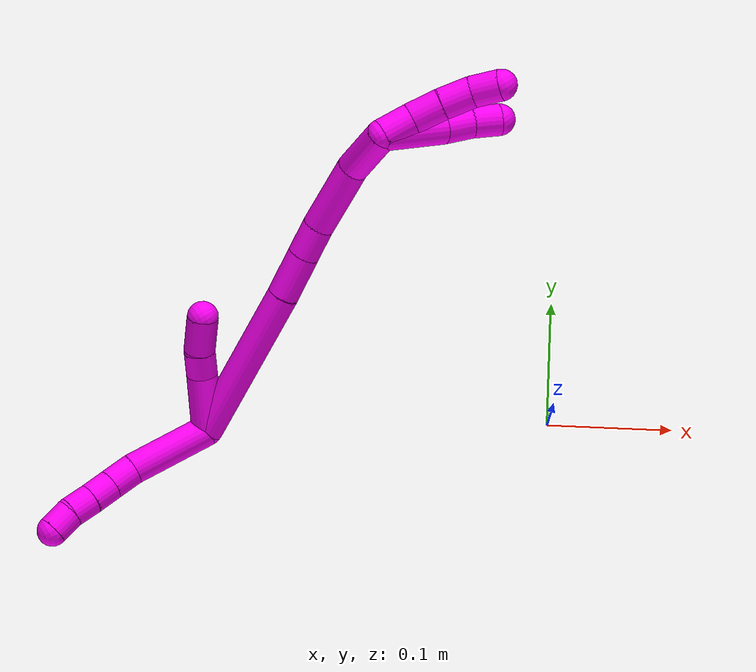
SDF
<sdf version="1.7">
 <world name="default">
  <model name="10">
   <static>0</static>
   <link name="10">
    <collision name="collision-cylinder-e_1_2_8">
     <pose>-0.000789 0.001289 0.033544 -0.038422 -0.02351 0.000452</pose>
     <geometry><cylinder><radius>0.0125</radius><length>0.067155</length></cylinder></geometry>
     <surface>
      <friction><ode><mu>1.16</mu><mu2>1.16</mu2><slip1>0</slip1><slip2>0</slip2></ode></friction>
      <contact><ode><kp>1e+06</kp><kd>1</kd><max_vel>0</max_vel><min_depth>0.001</min_depth></ode></contact>
     </surface>
    </collision>
    <visual name="visual-cylinder-e_1_2_8">
     <pose>-0.000789 0.001289 0.033544 -0.038422 -0.02351 0.000452</pose>
     <geometry><cylinder><radius>0.0125</radius><length>0.067155</length></cylinder></geometry>
     <material><ambient>1 0 0.964706 1</ambient></material>
    </visual>
    <collision name="collision-cylinder-e_2_8_9">
     <pose>0.000792 0.001615 0.078163 0.086845 0.210128 0.009164</pose>
     <geometry><cylinder><radius>0.0125</radius><length>0.022734</length></cylinder></geometry>
     <surface>
      <friction><ode><mu>1.16</mu><mu2>1.16</mu2><slip1>0</slip1><slip2>0</slip2></ode></friction>
      <contact><ode><kp>1e+06</kp><kd>1</kd><max_vel>0</max_vel><min_depth>0.001</min_depth></ode></contact>
     </surface>
    </collision>
    <visual name="visual-cylinder-e_2_8_9">
     <pose>0.000792 0.001615 0.078163 0.086845 0.210128 0.009164</pose>
     <geometry><cylinder><radius>0.0125</radius><length>0.022734</length></cylinder></geometry>
     <material><ambient>1 0 0.964706 1</ambient></material>
    </visual>
    <collision name="collision-cylinder-e_3_9_10">
     <pose>0.005406 -0.000219 0.098959 0.089235 0.225863 0.010127</pose>
     <geometry><cylinder><radius>0.0125</radius><length>0.020028</length></cylinder></geometry>
     <surface>
      <friction><ode><mu>1.16</mu><mu2>1.16</mu2><slip1>0</slip1><slip2>0</slip2></ode></friction>
      <contact><ode><kp>1e+06</kp><kd>1</kd><max_vel>0</max_vel><min_depth>0.001</min_depth></ode></contact>
     </surface>
    </collision>
    <visual name="visual-cylinder-e_3_9_10">
     <pose>0.005406 -0.000219 0.098959 0.089235 0.225863 0.010127</pose>
     <geometry><cylinder><radius>0.0125</radius><length>0.020028</length></cylinder></geometry>
     <material><ambient>1 0 0.964706 1</ambient></material>
    </visual>
    <collision name="collision-cylinder-e_4_10_11">
     <pose>0.009726 -0.001608 0.118465 0.052937 0.208867 0.00555</pose>
     <geometry><cylinder><radius>0.0125</radius><length>0.020033</length></cylinder></geometry>
     <surface>
      <friction><ode><mu>1.16</mu><mu2>1.16</mu2><slip1>0</slip1><slip2>0</slip2></ode></friction>
      <contact><ode><kp>1e+06</kp><kd>1</kd><max_vel>0</max_vel><min_depth>0.001</min_depth></ode></contact>
     </surface>
    </collision>
    <visual name="visual-cylinder-e_4_10_11">
     <pose>0.009726 -0.001608 0.118465 0.052937 0.208867 0.00555</pose>
     <geometry><cylinder><radius>0.0125</radius><length>0.020033</length></cylinder></geometry>
     <material><ambient>1 0 0.964706 1</ambient></material>
    </visual>
    <collision name="collision-cylinder-e_5_11_6">
     <pose>0.012991 -0.00471 0.137863 0.262639 0.11887 0.015718</pose>
     <geometry><cylinder><radius>0.0125</radius><length>0.020049</length></cylinder></geometry>
     <surface>
      <friction><ode><mu>1.16</mu><mu2>1.16</mu2><slip1>0</slip1><slip2>0</slip2></ode></friction>
      <contact><ode><kp>1e+06</kp><kd>1</kd><max_vel>0</max_vel><min_depth>0.001</min_depth></ode></contact>
     </surface>
    </collision>
    <visual name="visual-cylinder-e_5_11_6">
     <pose>0.012991 -0.00471 0.137863 0.262639 0.11887 0.015718</pose>
     <geometry><cylinder><radius>0.0125</radius><length>0.020049</length></cylinder></geometry>
     <material><ambient>1 0 0.964706 1</ambient></material>
    </visual>
    <collision name="collision-cylinder-e_1_2_12">
     <pose>0.009015 0.020618 -0.008195 -1.94913 0.385955 -0.560732</pose>
     <geometry><cylinder><radius>0.0125</radius><length>0.047896</length></cylinder></geometry>
     <surface>
      <friction><ode><mu>1.16</mu><mu2>1.16</mu2><slip1>0</slip1><slip2>0</slip2></ode></friction>
      <contact><ode><kp>1e+06</kp><kd>1</kd><max_vel>0</max_vel><min_depth>0.001</min_depth></ode></contact>
     </surface>
    </collision>
    <visual name="visual-cylinder-e_1_2_12">
     <pose>0.009015 0.020618 -0.008195 -1.94913 0.385955 -0.560732</pose>
     <geometry><cylinder><radius>0.0125</radius><length>0.047896</length></cylinder></geometry>
     <material><ambient>1 0 0.964706 1</ambient></material>
    </visual>
    <collision name="collision-cylinder-e_2_12_13">
     <pose>0.023889 0.049906 -0.019391 -1.90403 0.568255 -0.77839</pose>
     <geometry><cylinder><radius>0.0125</radius><length>0.021773</length></cylinder></geometry>
     <surface>
      <friction><ode><mu>1.16</mu><mu2>1.16</mu2><slip1>0</slip1><slip2>0</slip2></ode></friction>
      <contact><ode><kp>1e+06</kp><kd>1</kd><max_vel>0</max_vel><min_depth>0.001</min_depth></ode></contact>
     </surface>
    </collision>
    <visual name="visual-cylinder-e_2_12_13">
     <pose>0.023889 0.049906 -0.019391 -1.90403 0.568255 -0.77839</pose>
     <geometry><cylinder><radius>0.0125</radius><length>0.021773</length></cylinder></geometry>
     <material><ambient>1 0 0.964706 1</ambient></material>
    </visual>
    <collision name="collision-cylinder-e_3_13_5">
     <pose>0.037737 0.069569 -0.029126 -2.12039 0.554831 -0.940632</pose>
     <geometry><cylinder><radius>0.0125</radius><length>0.030331</length></cylinder></geometry>
     <surface>
      <friction><ode><mu>1.16</mu><mu2>1.16</mu2><slip1>0</slip1><slip2>0</slip2></ode></friction>
      <contact><ode><kp>1e+06</kp><kd>1</kd><max_vel>0</max_vel><min_depth>0.001</min_depth></ode></contact>
     </surface>
    </collision>
    <visual name="visual-cylinder-e_3_13_5">
     <pose>0.037737 0.069569 -0.029126 -2.12039 0.554831 -0.940632</pose>
     <geometry><cylinder><radius>0.0125</radius><length>0.030331</length></cylinder></geometry>
     <material><ambient>1 0 0.964706 1</ambient></material>
    </visual>
    <collision name="collision-cylinder-e_1_2_14">
     <pose>0.032552 0.032203 -0.04852 -2.55565 0.509713 -1.42473</pose>
     <geometry><cylinder><radius>0.0125</radius><length>0.133428</length></cylinder></geometry>
     <surface>
      <friction><ode><mu>1.16</mu><mu2>1.16</mu2><slip1>0</slip1><slip2>0</slip2></ode></friction>
      <contact><ode><kp>1e+06</kp><kd>1</kd><max_vel>0</max_vel><min_depth>0.001</min_depth></ode></contact>
     </surface>
    </collision>
    <visual name="visual-cylinder-e_1_2_14">
     <pose>0.032552 0.032203 -0.04852 -2.55565 0.509713 -1.42473</pose>
     <geometry><cylinder><radius>0.0125</radius><length>0.133428</length></cylinder></geometry>
     <material><ambient>1 0 0.964706 1</ambient></material>
    </visual>
    <collision name="collision-cylinder-e_2_14_15">
     <pose>0.073496 0.074196 -0.110539 -2.51407 0.466266 -1.26348</pose>
     <geometry><cylinder><radius>0.0125</radius><length>0.037339</length></cylinder></geometry>
     <surface>
      <friction><ode><mu>1.16</mu><mu2>1.16</mu2><slip1>0</slip1><slip2>0</slip2></ode></friction>
      <contact><ode><kp>1e+06</kp><kd>1</kd><max_vel>0</max_vel><min_depth>0.001</min_depth></ode></contact>
     </surface>
    </collision>
    <visual name="visual-cylinder-e_2_14_15">
     <pose>0.073496 0.074196 -0.110539 -2.51407 0.466266 -1.26348</pose>
     <geometry><cylinder><radius>0.0125</radius><length>0.037339</length></cylinder></geometry>
     <material><ambient>1 0 0.964706 1</ambient></material>
    </visual>
    <collision name="collision-cylinder-e_3_15_16">
     <pose>0.088206 0.090928 -0.133716 -2.51947 0.487723 -1.31727</pose>
     <geometry><cylinder><radius>0.0125</radius><length>0.026961</length></cylinder></geometry>
     <surface>
      <friction><ode><mu>1.16</mu><mu2>1.16</mu2><slip1>0</slip1><slip2>0</slip2></ode></friction>
      <contact><ode><kp>1e+06</kp><kd>1</kd><max_vel>0</max_vel><min_depth>0.001</min_depth></ode></contact>
     </surface>
    </collision>
    <visual name="visual-cylinder-e_3_15_16">
     <pose>0.088206 0.090928 -0.133716 -2.51947 0.487723 -1.31727</pose>
     <geometry><cylinder><radius>0.0125</radius><length>0.026961</length></cylinder></geometry>
     <material><ambient>1 0 0.964706 1</ambient></material>
    </visual>
    <collision name="collision-cylinder-e_4_16_17">
     <pose>0.110965 0.11062 -0.163294 -2.5717 0.607773 -1.63897</pose>
     <geometry><cylinder><radius>0.0125</radius><length>0.057584</length></cylinder></geometry>
     <surface>
      <friction><ode><mu>1.16</mu><mu2>1.16</mu2><slip1>0</slip1><slip2>0</slip2></ode></friction>
      <contact><ode><kp>1e+06</kp><kd>1</kd><max_vel>0</max_vel><min_depth>0.001</min_depth></ode></contact>
     </surface>
    </collision>
    <visual name="visual-cylinder-e_4_16_17">
     <pose>0.110965 0.11062 -0.163294 -2.5717 0.607773 -1.63897</pose>
     <geometry><cylinder><radius>0.0125</radius><length>0.057584</length></cylinder></geometry>
     <material><ambient>1 0 0.964706 1</ambient></material>
    </visual>
    <collision name="collision-cylinder-e_5_17_1">
     <pose>0.14499 0.128609 -0.195948 -2.75198 0.905845 -2.37123</pose>
     <geometry><cylinder><radius>0.0125</radius><length>0.044688</length></cylinder></geometry>
     <surface>
      <friction><ode><mu>1.16</mu><mu2>1.16</mu2><slip1>0</slip1><slip2>0</slip2></ode></friction>
      <contact><ode><kp>1e+06</kp><kd>1</kd><max_vel>0</max_vel><min_depth>0.001</min_depth></ode></contact>
     </surface>
    </collision>
    <visual name="visual-cylinder-e_5_17_1">
     <pose>0.14499 0.128609 -0.195948 -2.75198 0.905845 -2.37123</pose>
     <geometry><cylinder><radius>0.0125</radius><length>0.044688</length></cylinder></geometry>
     <material><ambient>1 0 0.964706 1</ambient></material>
    </visual>
    <collision name="collision-cylinder-e_1_1_18">
     <pose>0.16272 0.13366 -0.221618 3.12722 0.011366 1.33828</pose>
     <geometry><cylinder><radius>0.0125</radius><length>0.025837</length></cylinder></geometry>
     <surface>
      <friction><ode><mu>1.16</mu><mu2>1.16</mu2><slip1>0</slip1><slip2>0</slip2></ode></friction>
      <contact><ode><kp>1e+06</kp><kd>1</kd><max_vel>0</max_vel><min_depth>0.001</min_depth></ode></contact>
     </surface>
    </collision>
    <visual name="visual-cylinder-e_1_1_18">
     <pose>0.16272 0.13366 -0.221618 3.12722 0.011366 1.33828</pose>
     <geometry><cylinder><radius>0.0125</radius><length>0.025837</length></cylinder></geometry>
     <material><ambient>1 0 0.964706 1</ambient></material>
    </visual>
    <collision name="collision-cylinder-e_2_18_19">
     <pose>0.165956 0.132649 -0.247015 3.07549 0.242081 2.61079</pose>
     <geometry><cylinder><radius>0.0125</radius><length>0.025768</length></cylinder></geometry>
     <surface>
      <friction><ode><mu>1.16</mu><mu2>1.16</mu2><slip1>0</slip1><slip2>0</slip2></ode></friction>
      <contact><ode><kp>1e+06</kp><kd>1</kd><max_vel>0</max_vel><min_depth>0.001</min_depth></ode></contact>
     </surface>
    </collision>
    <visual name="visual-cylinder-e_2_18_19">
     <pose>0.165956 0.132649 -0.247015 3.07549 0.242081 2.61079</pose>
     <geometry><cylinder><radius>0.0125</radius><length>0.025768</length></cylinder></geometry>
     <material><ambient>1 0 0.964706 1</ambient></material>
    </visual>
    <collision name="collision-cylinder-e_3_19_20">
     <pose>0.171832 0.130139 -0.27167 3.00418 0.22305 2.03961</pose>
     <geometry><cylinder><radius>0.0125</radius><length>0.025205</length></cylinder></geometry>
     <surface>
      <friction><ode><mu>1.16</mu><mu2>1.16</mu2><slip1>0</slip1><slip2>0</slip2></ode></friction>
      <contact><ode><kp>1e+06</kp><kd>1</kd><max_vel>0</max_vel><min_depth>0.001</min_depth></ode></contact>
     </surface>
    </collision>
    <visual name="visual-cylinder-e_3_19_20">
     <pose>0.171832 0.130139 -0.27167 3.00418 0.22305 2.03961</pose>
     <geometry><cylinder><radius>0.0125</radius><length>0.025205</length></cylinder></geometry>
     <material><ambient>1 0 0.964706 1</ambient></material>
    </visual>
    <collision name="collision-cylinder-e_4_20_4">
     <pose>0.179409 0.125207 -0.293892 2.82885 0.425852 1.88146</pose>
     <geometry><cylinder><radius>0.0125</radius><length>0.02319</length></cylinder></geometry>
     <surface>
      <friction><ode><mu>1.16</mu><mu2>1.16</mu2><slip1>0</slip1><slip2>0</slip2></ode></friction>
      <contact><ode><kp>1e+06</kp><kd>1</kd><max_vel>0</max_vel><min_depth>0.001</min_depth></ode></contact>
     </surface>
    </collision>
    <visual name="visual-cylinder-e_4_20_4">
     <pose>0.179409 0.125207 -0.293892 2.82885 0.425852 1.88146</pose>
     <geometry><cylinder><radius>0.0125</radius><length>0.02319</length></cylinder></geometry>
     <material><ambient>1 0 0.964706 1</ambient></material>
    </visual>
    <collision name="collision-cylinder-e_1_1_21">
     <pose>0.154699 0.12475 -0.232452 2.77583 -0.300261 -1.37111</pose>
     <geometry><cylinder><radius>0.0125</radius><length>0.053248</length></cylinder></geometry>
     <surface>
      <friction><ode><mu>1.16</mu><mu2>1.16</mu2><slip1>0</slip1><slip2>0</slip2></ode></friction>
      <contact><ode><kp>1e+06</kp><kd>1</kd><max_vel>0</max_vel><min_depth>0.001</min_depth></ode></contact>
     </surface>
    </collision>
    <visual name="visual-cylinder-e_1_1_21">
     <pose>0.154699 0.12475 -0.232452 2.77583 -0.300261 -1.37111</pose>
     <geometry><cylinder><radius>0.0125</radius><length>0.053248</length></cylinder></geometry>
     <material><ambient>1 0 0.964706 1</ambient></material>
    </visual>
    <collision name="collision-cylinder-e_2_21_22">
     <pose>0.144592 0.112294 -0.267534 2.85337 -0.186682 -1.14582</pose>
     <geometry><cylinder><radius>0.0125</radius><length>0.024056</length></cylinder></geometry>
     <surface>
      <friction><ode><mu>1.16</mu><mu2>1.16</mu2><slip1>0</slip1><slip2>0</slip2></ode></friction>
      <contact><ode><kp>1e+06</kp><kd>1</kd><max_vel>0</max_vel><min_depth>0.001</min_depth></ode></contact>
     </surface>
    </collision>
    <visual name="visual-cylinder-e_2_21_22">
     <pose>0.144592 0.112294 -0.267534 2.85337 -0.186682 -1.14582</pose>
     <geometry><cylinder><radius>0.0125</radius><length>0.024056</length></cylinder></geometry>
     <material><ambient>1 0 0.964706 1</ambient></material>
    </visual>
    <collision name="collision-cylinder-e_3_22_3">
     <pose>0.141972 0.104403 -0.289262 2.73058 -0.034165 -0.163552</pose>
     <geometry><cylinder><radius>0.0125</radius><length>0.022696</length></cylinder></geometry>
     <surface>
      <friction><ode><mu>1.16</mu><mu2>1.16</mu2><slip1>0</slip1><slip2>0</slip2></ode></friction>
      <contact><ode><kp>1e+06</kp><kd>1</kd><max_vel>0</max_vel><min_depth>0.001</min_depth></ode></contact>
     </surface>
    </collision>
    <visual name="visual-cylinder-e_3_22_3">
     <pose>0.141972 0.104403 -0.289262 2.73058 -0.034165 -0.163552</pose>
     <geometry><cylinder><radius>0.0125</radius><length>0.022696</length></cylinder></geometry>
     <material><ambient>1 0 0.964706 1</ambient></material>
    </visual>
    <collision name="collision-sphere-3">
     <pose>0.141584 0.099872 -0.299659 0 -0 0</pose>
     <geometry><sphere><radius>0.0125</radius></sphere></geometry>
     <surface>
      <friction><ode><mu>1.16</mu><mu2>1.16</mu2><slip1>0</slip1><slip2>0</slip2></ode></friction>
      <contact><ode><kp>1e+06</kp><kd>1</kd><max_vel>0</max_vel><min_depth>0.001</min_depth></ode></contact>
     </surface>
    </collision>
    <visual name="visual-sphere-3">
     <pose>0.141584 0.099872 -0.299659 0 -0 0</pose>
     <geometry><sphere><radius>0.0125</radius></sphere></geometry>
     <material><ambient>1 0 0.964706 1</ambient></material>
    </visual>
    <collision name="collision-sphere-22">
     <pose>0.142359 0.108934 -0.278866 0 -0 0</pose>
     <geometry><sphere><radius>0.0125</radius></sphere></geometry>
     <surface>
      <friction><ode><mu>1.16</mu><mu2>1.16</mu2><slip1>0</slip1><slip2>0</slip2></ode></friction>
      <contact><ode><kp>1e+06</kp><kd>1</kd><max_vel>0</max_vel><min_depth>0.001</min_depth></ode></contact>
     </surface>
    </collision>
    <visual name="visual-sphere-22">
     <pose>0.142359 0.108934 -0.278866 0 -0 0</pose>
     <geometry><sphere><radius>0.0125</radius></sphere></geometry>
     <material><ambient>1 0 0.964706 1</ambient></material>
    </visual>
    <collision name="collision-sphere-21">
     <pose>0.146824 0.115653 -0.256202 0 -0 0</pose>
     <geometry><sphere><radius>0.0125</radius></sphere></geometry>
     <surface>
      <friction><ode><mu>1.16</mu><mu2>1.16</mu2><slip1>0</slip1><slip2>0</slip2></ode></friction>
      <contact><ode><kp>1e+06</kp><kd>1</kd><max_vel>0</max_vel><min_depth>0.001</min_depth></ode></contact>
     </surface>
    </collision>
    <visual name="visual-sphere-21">
     <pose>0.146824 0.115653 -0.256202 0 -0 0</pose>
     <geometry><sphere><radius>0.0125</radius></sphere></geometry>
     <material><ambient>1 0 0.964706 1</ambient></material>
    </visual>
    <collision name="collision-sphere-4">
     <pose>0.184199 0.121958 -0.303939 0 -0 0</pose>
     <geometry><sphere><radius>0.0125</radius></sphere></geometry>
     <surface>
      <friction><ode><mu>1.16</mu><mu2>1.16</mu2><slip1>0</slip1><slip2>0</slip2></ode></friction>
      <contact><ode><kp>1e+06</kp><kd>1</kd><max_vel>0</max_vel><min_depth>0.001</min_depth></ode></contact>
     </surface>
    </collision>
    <visual name="visual-sphere-4">
     <pose>0.184199 0.121958 -0.303939 0 -0 0</pose>
     <geometry><sphere><radius>0.0125</radius></sphere></geometry>
     <material><ambient>1 0 0.964706 1</ambient></material>
    </visual>
    <collision name="collision-sphere-20">
     <pose>0.174619 0.128455 -0.283844 0 -0 0</pose>
     <geometry><sphere><radius>0.0125</radius></sphere></geometry>
     <surface>
      <friction><ode><mu>1.16</mu><mu2>1.16</mu2><slip1>0</slip1><slip2>0</slip2></ode></friction>
      <contact><ode><kp>1e+06</kp><kd>1</kd><max_vel>0</max_vel><min_depth>0.001</min_depth></ode></contact>
     </surface>
    </collision>
    <visual name="visual-sphere-20">
     <pose>0.174619 0.128455 -0.283844 0 -0 0</pose>
     <geometry><sphere><radius>0.0125</radius></sphere></geometry>
     <material><ambient>1 0 0.964706 1</ambient></material>
    </visual>
    <collision name="collision-sphere-6">
     <pose>0.01418 -0.007295 0.147475 0 -0 0</pose>
     <geometry><sphere><radius>0.0125</radius></sphere></geometry>
     <surface>
      <friction><ode><mu>1.16</mu><mu2>1.16</mu2><slip1>0</slip1><slip2>0</slip2></ode></friction>
      <contact><ode><kp>1e+06</kp><kd>1</kd><max_vel>0</max_vel><min_depth>0.001</min_depth></ode></contact>
     </surface>
    </collision>
    <visual name="visual-sphere-6">
     <pose>0.01418 -0.007295 0.147475 0 -0 0</pose>
     <geometry><sphere><radius>0.0125</radius></sphere></geometry>
     <material><ambient>1 0 0.964706 1</ambient></material>
    </visual>
    <collision name="collision-sphere-11">
     <pose>0.011803 -0.002126 0.12825 0 -0 0</pose>
     <geometry><sphere><radius>0.0125</radius></sphere></geometry>
     <surface>
      <friction><ode><mu>1.16</mu><mu2>1.16</mu2><slip1>0</slip1><slip2>0</slip2></ode></friction>
      <contact><ode><kp>1e+06</kp><kd>1</kd><max_vel>0</max_vel><min_depth>0.001</min_depth></ode></contact>
     </surface>
    </collision>
    <visual name="visual-sphere-11">
     <pose>0.011803 -0.002126 0.12825 0 -0 0</pose>
     <geometry><sphere><radius>0.0125</radius></sphere></geometry>
     <material><ambient>1 0 0.964706 1</ambient></material>
    </visual>
    <collision name="collision-sphere-10">
     <pose>0.007649 -0.001089 0.10868 0 -0 0</pose>
     <geometry><sphere><radius>0.0125</radius></sphere></geometry>
     <surface>
      <friction><ode><mu>1.16</mu><mu2>1.16</mu2><slip1>0</slip1><slip2>0</slip2></ode></friction>
      <contact><ode><kp>1e+06</kp><kd>1</kd><max_vel>0</max_vel><min_depth>0.001</min_depth></ode></contact>
     </surface>
    </collision>
    <visual name="visual-sphere-10">
     <pose>0.007649 -0.001089 0.10868 0 -0 0</pose>
     <geometry><sphere><radius>0.0125</radius></sphere></geometry>
     <material><ambient>1 0 0.964706 1</ambient></material>
    </visual>
    <collision name="collision-sphere-9">
     <pose>0.003163 0.00065 0.089238 0 -0 0</pose>
     <geometry><sphere><radius>0.0125</radius></sphere></geometry>
     <surface>
      <friction><ode><mu>1.16</mu><mu2>1.16</mu2><slip1>0</slip1><slip2>0</slip2></ode></friction>
      <contact><ode><kp>1e+06</kp><kd>1</kd><max_vel>0</max_vel><min_depth>0.001</min_depth></ode></contact>
     </surface>
    </collision>
    <visual name="visual-sphere-9">
     <pose>0.003163 0.00065 0.089238 0 -0 0</pose>
     <geometry><sphere><radius>0.0125</radius></sphere></geometry>
     <material><ambient>1 0 0.964706 1</ambient></material>
    </visual>
    <collision name="collision-sphere-2">
     <geometry><sphere><radius>0.0125</radius></sphere></geometry>
     <surface>
      <friction><ode><mu>1.16</mu><mu2>1.16</mu2><slip1>0</slip1><slip2>0</slip2></ode></friction>
      <contact><ode><kp>1e+06</kp><kd>1</kd><max_vel>0</max_vel><min_depth>0.001</min_depth></ode></contact>
     </surface>
    </collision>
    <visual name="visual-sphere-2">
     <geometry><sphere><radius>0.0125</radius></sphere></geometry>
     <material><ambient>1 0 0.964706 1</ambient></material>
    </visual>
    <collision name="collision-sphere-19">
     <pose>0.169044 0.131822 -0.259496 0 -0 0</pose>
     <geometry><sphere><radius>0.0125</radius></sphere></geometry>
     <surface>
      <friction><ode><mu>1.16</mu><mu2>1.16</mu2><slip1>0</slip1><slip2>0</slip2></ode></friction>
      <contact><ode><kp>1e+06</kp><kd>1</kd><max_vel>0</max_vel><min_depth>0.001</min_depth></ode></contact>
     </surface>
    </collision>
    <visual name="visual-sphere-19">
     <pose>0.169044 0.131822 -0.259496 0 -0 0</pose>
     <geometry><sphere><radius>0.0125</radius></sphere></geometry>
     <material><ambient>1 0 0.964706 1</ambient></material>
    </visual>
    <collision name="collision-sphere-8">
     <pose>-0.001579 0.002579 0.067087 0 -0 0</pose>
     <geometry><sphere><radius>0.0125</radius></sphere></geometry>
     <surface>
      <friction><ode><mu>1.16</mu><mu2>1.16</mu2><slip1>0</slip1><slip2>0</slip2></ode></friction>
      <contact><ode><kp>1e+06</kp><kd>1</kd><max_vel>0</max_vel><min_depth>0.001</min_depth></ode></contact>
     </surface>
    </collision>
    <visual name="visual-sphere-8">
     <pose>-0.001579 0.002579 0.067087 0 -0 0</pose>
     <geometry><sphere><radius>0.0125</radius></sphere></geometry>
     <material><ambient>1 0 0.964706 1</ambient></material>
    </visual>
    <collision name="collision-sphere-12">
     <pose>0.01803 0.041235 -0.01639 0 -0 0</pose>
     <geometry><sphere><radius>0.0125</radius></sphere></geometry>
     <surface>
      <friction><ode><mu>1.16</mu><mu2>1.16</mu2><slip1>0</slip1><slip2>0</slip2></ode></friction>
      <contact><ode><kp>1e+06</kp><kd>1</kd><max_vel>0</max_vel><min_depth>0.001</min_depth></ode></contact>
     </surface>
    </collision>
    <visual name="visual-sphere-12">
     <pose>0.01803 0.041235 -0.01639 0 -0 0</pose>
     <geometry><sphere><radius>0.0125</radius></sphere></geometry>
     <material><ambient>1 0 0.964706 1</ambient></material>
    </visual>
    <collision name="collision-sphere-13">
     <pose>0.029747 0.058576 -0.022393 0 -0 0</pose>
     <geometry><sphere><radius>0.0125</radius></sphere></geometry>
     <surface>
      <friction><ode><mu>1.16</mu><mu2>1.16</mu2><slip1>0</slip1><slip2>0</slip2></ode></friction>
      <contact><ode><kp>1e+06</kp><kd>1</kd><max_vel>0</max_vel><min_depth>0.001</min_depth></ode></contact>
     </surface>
    </collision>
    <visual name="visual-sphere-13">
     <pose>0.029747 0.058576 -0.022393 0 -0 0</pose>
     <geometry><sphere><radius>0.0125</radius></sphere></geometry>
     <material><ambient>1 0 0.964706 1</ambient></material>
    </visual>
    <collision name="collision-sphere-5">
     <pose>0.045726 0.080561 -0.035859 0 -0 0</pose>
     <geometry><sphere><radius>0.0125</radius></sphere></geometry>
     <surface>
      <friction><ode><mu>1.16</mu><mu2>1.16</mu2><slip1>0</slip1><slip2>0</slip2></ode></friction>
      <contact><ode><kp>1e+06</kp><kd>1</kd><max_vel>0</max_vel><min_depth>0.001</min_depth></ode></contact>
     </surface>
    </collision>
    <visual name="visual-sphere-5">
     <pose>0.045726 0.080561 -0.035859 0 -0 0</pose>
     <geometry><sphere><radius>0.0125</radius></sphere></geometry>
     <material><ambient>1 0 0.964706 1</ambient></material>
    </visual>
    <collision name="collision-sphere-14">
     <pose>0.065103 0.064405 -0.097039 0 -0 0</pose>
     <geometry><sphere><radius>0.0125</radius></sphere></geometry>
     <surface>
      <friction><ode><mu>1.16</mu><mu2>1.16</mu2><slip1>0</slip1><slip2>0</slip2></ode></friction>
      <contact><ode><kp>1e+06</kp><kd>1</kd><max_vel>0</max_vel><min_depth>0.001</min_depth></ode></contact>
     </surface>
    </collision>
    <visual name="visual-sphere-14">
     <pose>0.065103 0.064405 -0.097039 0 -0 0</pose>
     <geometry><sphere><radius>0.0125</radius></sphere></geometry>
     <material><ambient>1 0 0.964706 1</ambient></material>
    </visual>
    <collision name="collision-sphere-15">
     <pose>0.081889 0.083988 -0.124038 0 -0 0</pose>
     <geometry><sphere><radius>0.0125</radius></sphere></geometry>
     <surface>
      <friction><ode><mu>1.16</mu><mu2>1.16</mu2><slip1>0</slip1><slip2>0</slip2></ode></friction>
      <contact><ode><kp>1e+06</kp><kd>1</kd><max_vel>0</max_vel><min_depth>0.001</min_depth></ode></contact>
     </surface>
    </collision>
    <visual name="visual-sphere-15">
     <pose>0.081889 0.083988 -0.124038 0 -0 0</pose>
     <geometry><sphere><radius>0.0125</radius></sphere></geometry>
     <material><ambient>1 0 0.964706 1</ambient></material>
    </visual>
    <collision name="collision-sphere-16">
     <pose>0.094523 0.097868 -0.143393 0 -0 0</pose>
     <geometry><sphere><radius>0.0125</radius></sphere></geometry>
     <surface>
      <friction><ode><mu>1.16</mu><mu2>1.16</mu2><slip1>0</slip1><slip2>0</slip2></ode></friction>
      <contact><ode><kp>1e+06</kp><kd>1</kd><max_vel>0</max_vel><min_depth>0.001</min_depth></ode></contact>
     </surface>
    </collision>
    <visual name="visual-sphere-16">
     <pose>0.094523 0.097868 -0.143393 0 -0 0</pose>
     <geometry><sphere><radius>0.0125</radius></sphere></geometry>
     <material><ambient>1 0 0.964706 1</ambient></material>
    </visual>
    <collision name="collision-sphere-17">
     <pose>0.127406 0.123373 -0.183194 0 -0 0</pose>
     <geometry><sphere><radius>0.0125</radius></sphere></geometry>
     <surface>
      <friction><ode><mu>1.16</mu><mu2>1.16</mu2><slip1>0</slip1><slip2>0</slip2></ode></friction>
      <contact><ode><kp>1e+06</kp><kd>1</kd><max_vel>0</max_vel><min_depth>0.001</min_depth></ode></contact>
     </surface>
    </collision>
    <visual name="visual-sphere-17">
     <pose>0.127406 0.123373 -0.183194 0 -0 0</pose>
     <geometry><sphere><radius>0.0125</radius></sphere></geometry>
     <material><ambient>1 0 0.964706 1</ambient></material>
    </visual>
    <collision name="collision-sphere-1">
     <pose>0.162573 0.133846 -0.208701 0 -0 0</pose>
     <geometry><sphere><radius>0.0125</radius></sphere></geometry>
     <surface>
      <friction><ode><mu>1.16</mu><mu2>1.16</mu2><slip1>0</slip1><slip2>0</slip2></ode></friction>
      <contact><ode><kp>1e+06</kp><kd>1</kd><max_vel>0</max_vel><min_depth>0.001</min_depth></ode></contact>
     </surface>
    </collision>
    <visual name="visual-sphere-1">
     <pose>0.162573 0.133846 -0.208701 0 -0 0</pose>
     <geometry><sphere><radius>0.0125</radius></sphere></geometry>
     <material><ambient>1 0 0.964706 1</ambient></material>
    </visual>
    <collision name="collision-sphere-18">
     <pose>0.162867 0.133475 -0.234534 0 -0 0</pose>
     <geometry><sphere><radius>0.0125</radius></sphere></geometry>
     <surface>
      <friction><ode><mu>1.16</mu><mu2>1.16</mu2><slip1>0</slip1><slip2>0</slip2></ode></friction>
      <contact><ode><kp>1e+06</kp><kd>1</kd><max_vel>0</max_vel><min_depth>0.001</min_depth></ode></contact>
     </surface>
    </collision>
    <visual name="visual-sphere-18">
     <pose>0.162867 0.133475 -0.234534 0 -0 0</pose>
     <geometry><sphere><radius>0.0125</radius></sphere></geometry>
     <material><ambient>1 0 0.964706 1</ambient></material>
    </visual>
    <inertial>
     <pose>0.075826 0.067441 -0.09873 0 -0 0</pose>
     <mass>0.75</mass>
     <inertia>
      <ixx>-0.000131</ixx>
      <ixy>0</ixy>
      <ixz>0</ixz>
      <iyy>-0.000129</iyy>
      <iyz>0</iyz>
      <izz>-0.000266</izz>
     </inertia>
    </inertial>
   </link>
   <pose>-0.272473 -0.02001 0.025962 1.23629 -1.349 -0.655705</pose>
  </model>
 </world>
</sdf>
